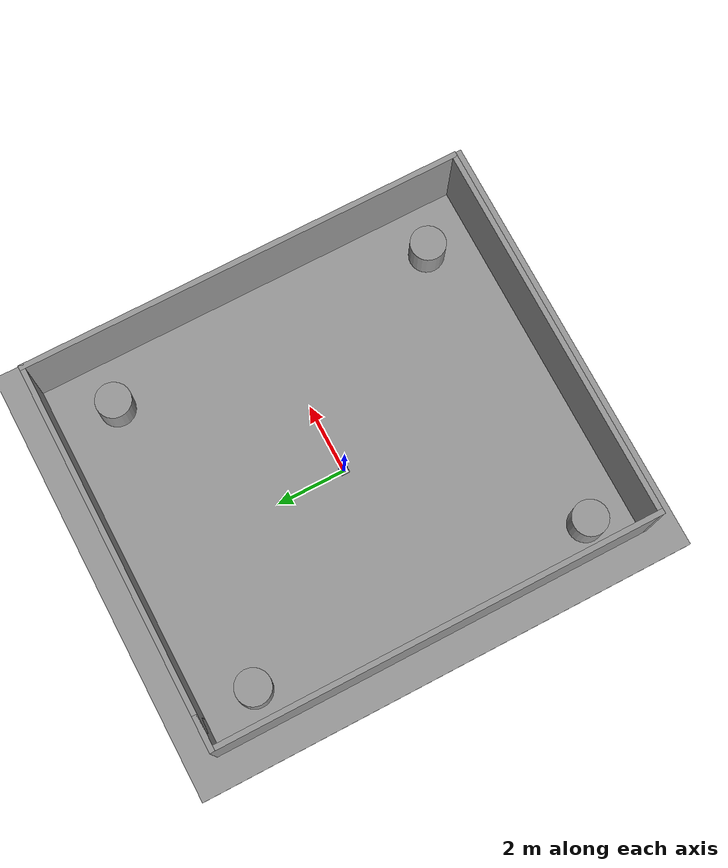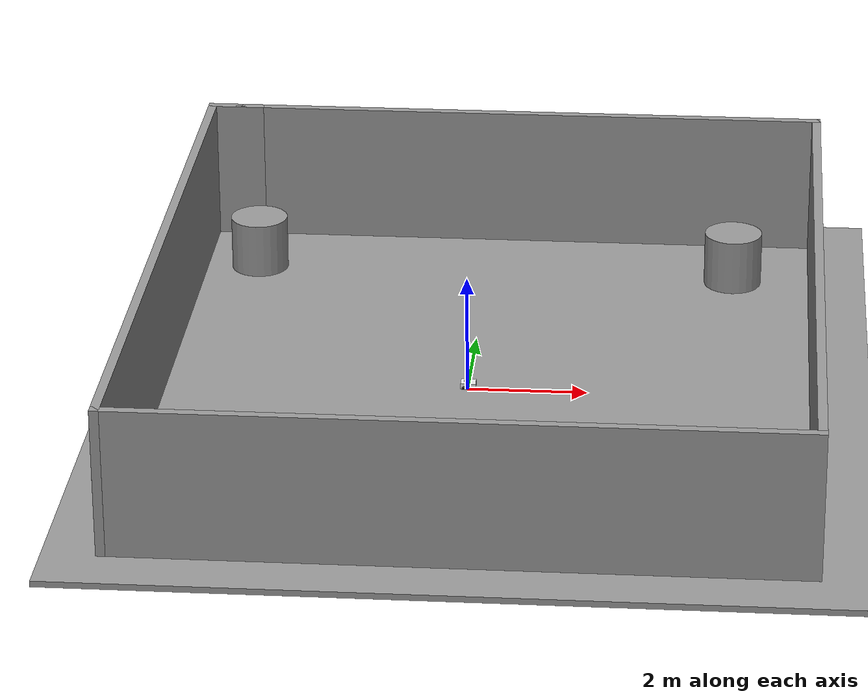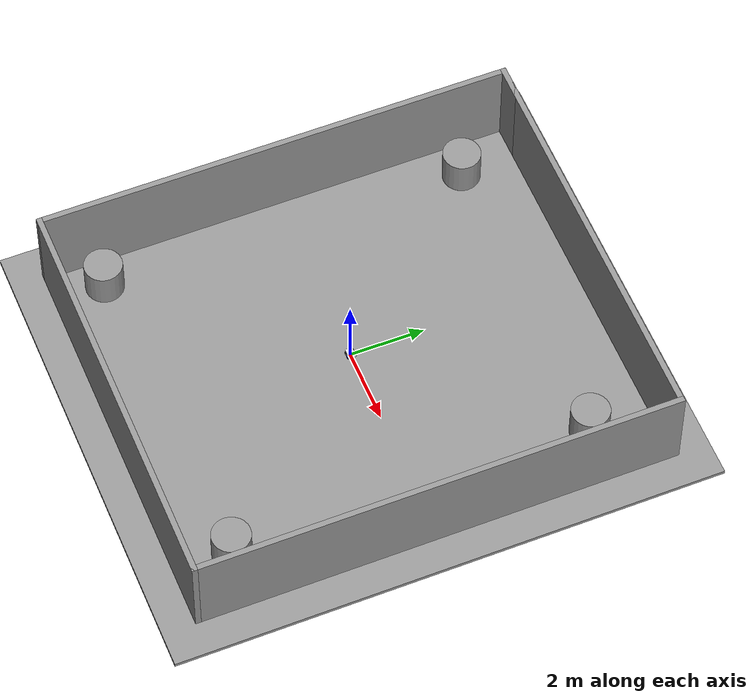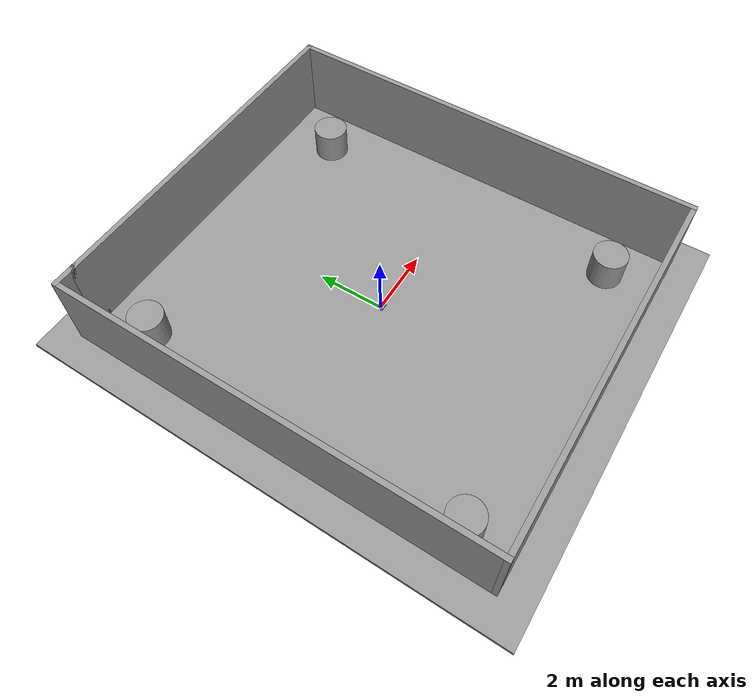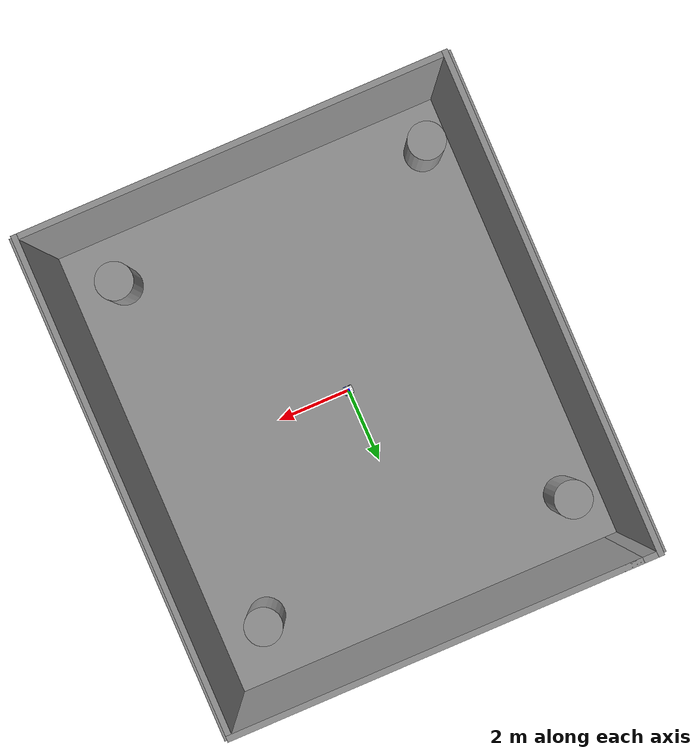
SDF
<sdf version="1.7">
 <world name="default">
  <light name="sun" type="directional">
   <pose>0 0 10 0 -0 0</pose>
   <diffuse>0.8 0.8 0.8 1</diffuse>
   <specular>0.2 0.2 0.2 1</specular>
   <attenuation>
    <range>1000</range>
    <constant>0.9</constant>
    <linear>0.01</linear>
    <quadratic>0.001</quadratic>
   </attenuation>
   <direction>-0.5 0.1 -0.9</direction>
   <spot><inner_angle>0</inner_angle><outer_angle>0</outer_angle><falloff>0</falloff></spot>
  </light>
  <model name="ground_plane">
   <static>1</static>
   <link name="link">
    <collision name="collision">
     <geometry><plane><normal>0 0 1</normal><size>100 100</size></plane></geometry>
     <surface>
      <contact><collide_bitmask>65535</collide_bitmask></contact>
      <friction><ode><mu>100</mu><mu2>50</mu2></ode></friction>
     </surface>
    </collision>
    <visual name="visual">
     <cast_shadows>0</cast_shadows>
     <geometry><plane><normal>0 0 1</normal><size>100 100</size></plane></geometry>
     <material>
      <script><uri>file://media/materials/scripts/gazebo.material</uri><name>Gazebo/Grey</name></script>
     </material>
    </visual>
   </link>
  </model>
  <gravity>0 0 -9.8</gravity>
  <magnetic_field>6e-06 2.3e-05 -4.2e-05</magnetic_field>
  <atmosphere type="adiabatic"/>
  <physics type="ode">
   <max_step_size>0.001</max_step_size>
   <real_time_factor>1</real_time_factor>
   <real_time_update_rate>1000</real_time_update_rate>
  </physics>
  <scene><ambient>0.4 0.4 0.4 1</ambient><background>0.7 0.7 0.7 1</background><shadows>1</shadows></scene>
  <audio><device>default</device></audio>
  <spherical_coordinates>
   <surface_model>EARTH_WGS84</surface_model>
   <latitude_deg>0</latitude_deg>
   <longitude_deg>0</longitude_deg>
   <elevation>0</elevation>
   <heading_deg>0</heading_deg>
  </spherical_coordinates>
  <model name="my_bot">
   <link name="base_link">
    <inertial>
     <pose>-0.004167 0 0.058333 0 -0 0</pose>
     <mass>0.6</mass>
     <inertia>
      <ixx>0.0023675</ixx>
      <ixy>0</ixy>
      <ixz>0.000104167</ixz>
      <iyy>0.00335708</iyy>
      <iyz>0</iyz>
      <izz>0.00444792</izz>
     </inertia>
    </inertial>
    <collision name="base_link_fixed_joint_lump__chassis_collision">
     <pose>0 0 0.05 0 -0 0</pose>
     <geometry><box><size>0.25 0.2 0.1</size></box></geometry>
    </collision>
    <collision name="base_link_fixed_joint_lump__laser_frame_collision_1">
     <pose>-0.025 0 0.1 0 -0 0</pose>
     <geometry><cylinder><length>0.04</length><radius>0.05</radius></cylinder></geometry>
    </collision>
    <visual name="base_link_fixed_joint_lump__chassis_visual">
     <pose>0 0 0.05 0 -0 0</pose>
     <geometry><box><size>0.25 0.2 0.1</size></box></geometry>
     <material>
      <script><name>Gazebo/White</name><uri>file://media/materials/scripts/gazebo.material</uri></script>
     </material>
    </visual>
    <visual name="base_link_fixed_joint_lump__laser_frame_visual_1">
     <pose>-0.025 0 0.1 0 -0 0</pose>
     <geometry><cylinder><length>0.04</length><radius>0.05</radius></cylinder></geometry>
    </visual>
    <sensor name="laser" type="ray">
     <visualize>1</visualize>
     <update_rate>10</update_rate>
     <ray>
      <scan>
       <horizontal>
        <samples>360</samples>
        <resolution>1</resolution>
        <min_angle>-3.14</min_angle>
        <max_angle>3.14</max_angle>
       </horizontal>
       <vertical><samples>1</samples><min_angle>0</min_angle><max_angle>0</max_angle></vertical>
      </scan>
      <range><min>0.3</min><max>12</max><resolution>0.01</resolution></range>
     </ray>
     <plugin name="laser_controller" filename="libgazebo_ros_ray_sensor.so">
      <ros><argument>~/out:=scan</argument></ros>
      <output_type>sensor_msgs/LaserScan</output_type>
      <frame_name>laser_frame</frame_name>
     </plugin>
     <pose>-0.025 0 0.1 0 -0 0</pose>
    </sensor>
   </link>
   <joint name="left_front" type="revolute">
    <pose relative_to="base_link">0.0625 0.11 0 -1.5708 0 0</pose>
    <parent>base_link</parent>
    <child>left_wheel_front</child>
    <axis>
     <xyz>0 0 1</xyz>
     <limit><lower>-1e+16</lower><upper>1e+16</upper></limit>
     <dynamics><spring_reference>0</spring_reference><spring_stiffness>0</spring_stiffness></dynamics>
    </axis>
   </joint>
   <link name="left_wheel_front">
    <pose relative_to="left_front">0 0 0 0 -0 0</pose>
    <inertial>
     <mass>0.1</mass>
     <inertia>
      <ixx>6.58333e-05</ixx>
      <ixy>0</ixy>
      <ixz>0</ixz>
      <iyy>6.58333e-05</iyy>
      <iyz>0</iyz>
      <izz>0.000125</izz>
     </inertia>
    </inertial>
    <collision name="left_wheel_front_collision">
     <geometry><cylinder><length>0.02</length><radius>0.05</radius></cylinder></geometry>
    </collision>
    <visual name="left_wheel_front_visual">
     <geometry><cylinder><length>0.02</length><radius>0.05</radius></cylinder></geometry>
     <material>
      <script><name>Gazebo/Blue</name><uri>file://media/materials/scripts/gazebo.material</uri></script>
     </material>
    </visual>
   </link>
   <joint name="left_rear" type="revolute">
    <pose relative_to="base_link">-0.0625 0.11 0 -1.5708 0 0</pose>
    <parent>base_link</parent>
    <child>left_wheel_rear</child>
    <axis>
     <xyz>0 0 1</xyz>
     <limit><lower>-1e+16</lower><upper>1e+16</upper></limit>
     <dynamics><spring_reference>0</spring_reference><spring_stiffness>0</spring_stiffness></dynamics>
    </axis>
   </joint>
   <link name="left_wheel_rear">
    <pose relative_to="left_rear">0 0 0 0 -0 0</pose>
    <inertial>
     <mass>0.1</mass>
     <inertia>
      <ixx>6.58333e-05</ixx>
      <ixy>0</ixy>
      <ixz>0</ixz>
      <iyy>6.58333e-05</iyy>
      <iyz>0</iyz>
      <izz>0.000125</izz>
     </inertia>
    </inertial>
    <collision name="left_wheel_rear_collision">
     <geometry><cylinder><length>0.02</length><radius>0.05</radius></cylinder></geometry>
    </collision>
    <visual name="left_wheel_rear_visual">
     <geometry><cylinder><length>0.02</length><radius>0.05</radius></cylinder></geometry>
     <material>
      <script><name>Gazebo/Black</name><uri>file://media/materials/scripts/gazebo.material</uri></script>
     </material>
    </visual>
   </link>
   <joint name="right_front" type="revolute">
    <pose relative_to="base_link">0.0625 -0.11 0 1.5708 -0 0</pose>
    <parent>base_link</parent>
    <child>right_wheel_front</child>
    <axis>
     <xyz>0 0 -1</xyz>
     <limit><lower>-1e+16</lower><upper>1e+16</upper></limit>
     <dynamics><spring_reference>0</spring_reference><spring_stiffness>0</spring_stiffness></dynamics>
    </axis>
   </joint>
   <link name="right_wheel_front">
    <pose relative_to="right_front">0 0 0 0 -0 0</pose>
    <inertial>
     <mass>0.1</mass>
     <inertia>
      <ixx>6.58333e-05</ixx>
      <ixy>0</ixy>
      <ixz>0</ixz>
      <iyy>6.58333e-05</iyy>
      <iyz>0</iyz>
      <izz>0.000125</izz>
     </inertia>
    </inertial>
    <collision name="right_wheel_front_collision">
     <geometry><cylinder><length>0.02</length><radius>0.05</radius></cylinder></geometry>
    </collision>
    <visual name="right_wheel_front_visual">
     <geometry><cylinder><length>0.02</length><radius>0.05</radius></cylinder></geometry>
     <material>
      <script><name>Gazebo/Blue</name><uri>file://media/materials/scripts/gazebo.material</uri></script>
     </material>
    </visual>
   </link>
   <joint name="right_rear" type="revolute">
    <pose relative_to="base_link">-0.0625 -0.11 0 1.5708 -0 0</pose>
    <parent>base_link</parent>
    <child>right_wheel_rear</child>
    <axis>
     <xyz>0 0 -1</xyz>
     <limit><lower>-1e+16</lower><upper>1e+16</upper></limit>
     <dynamics><spring_reference>0</spring_reference><spring_stiffness>0</spring_stiffness></dynamics>
    </axis>
   </joint>
   <link name="right_wheel_rear">
    <pose relative_to="right_rear">0 0 0 0 -0 0</pose>
    <inertial>
     <mass>0.1</mass>
     <inertia>
      <ixx>6.58333e-05</ixx>
      <ixy>0</ixy>
      <ixz>0</ixz>
      <iyy>6.58333e-05</iyy>
      <iyz>0</iyz>
      <izz>0.000125</izz>
     </inertia>
    </inertial>
    <collision name="right_wheel_rear_collision">
     <geometry><cylinder><length>0.02</length><radius>0.05</radius></cylinder></geometry>
    </collision>
    <visual name="right_wheel_rear_visual">
     <geometry><cylinder><length>0.02</length><radius>0.05</radius></cylinder></geometry>
     <material>
      <script><name>Gazebo/Black</name><uri>file://media/materials/scripts/gazebo.material</uri></script>
     </material>
    </visual>
   </link>
   <static>0</static>
   <plugin name="gazebo_ros2_control" filename="libgazebo_ros2_control.so">
    <parameters>/home/aero-sapphire/ros2_ws/install/vander_bot/share/vander_bot/config/my_controllers.yaml</parameters>
   </plugin>
   <pose>0.018369 -0.000456 0.05 0 -0 0.002674</pose>
  </model>
  <model name="ground_plane_0">
   <static>1</static>
   <link name="link">
    <collision name="collision">
     <geometry><plane><normal>0 0 1</normal><size>100 100</size></plane></geometry>
     <surface>
      <contact><collide_bitmask>65535</collide_bitmask></contact>
      <friction><ode><mu>100</mu><mu2>50</mu2></ode></friction>
     </surface>
    </collision>
    <visual name="visual">
     <cast_shadows>0</cast_shadows>
     <geometry><plane><normal>0 0 1</normal><size>100 100</size></plane></geometry>
     <material>
      <script><uri>file://media/materials/scripts/gazebo.material</uri><name>Gazebo/Grey</name></script>
     </material>
    </visual>
   </link>
   <pose>0.14053 -0.808775 0 0 -0 0</pose>
  </model>
  <model name="unit_cylinder">
   <pose>-4.26193 -4.99528 0.499997 -4e-06 -3e-06 -0</pose>
   <link name="link">
    <inertial>
     <mass>1</mass>
     <inertia><ixx>0.145833</ixx><ixy>0</ixy><ixz>0</ixz><iyy>0.145833</iyy><iyz>0</iyz><izz>0.125</izz></inertia>
    </inertial>
    <collision name="collision">
     <geometry><cylinder><radius>0.5</radius><length>1</length></cylinder></geometry>
    </collision>
    <visual name="visual">
     <geometry><cylinder><radius>0.5</radius><length>1</length></cylinder></geometry>
     <material>
      <script><name>Gazebo/Grey</name><uri>file://media/materials/scripts/gazebo.material</uri></script>
     </material>
    </visual>
   </link>
  </model>
  <model name="unit_cylinder_0">
   <pose>-4.08787 4.75671 0.499993 4e-06 3e-06 -0</pose>
   <link name="link">
    <inertial>
     <mass>1</mass>
     <inertia><ixx>0.145833</ixx><ixy>0</ixy><ixz>0</ixz><iyy>0.145833</iyy><iyz>0</iyz><izz>0.125</izz></inertia>
    </inertial>
    <collision name="collision">
     <geometry><cylinder><radius>0.5</radius><length>1</length></cylinder></geometry>
    </collision>
    <visual name="visual">
     <geometry><cylinder><radius>0.5</radius><length>1</length></cylinder></geometry>
     <material>
      <script><name>Gazebo/Grey</name><uri>file://media/materials/scripts/gazebo.material</uri></script>
     </material>
    </visual>
   </link>
  </model>
  <model name="room">
   <pose>0.331868 0.013433 0 0 -0 0</pose>
   <link name="Wall_10">
    <collision name="Wall_10_Collision">
     <geometry><box><size>12.75 0.15 2.5</size></box></geometry>
     <pose>0 0 1.25 0 -0 0</pose>
    </collision>
    <visual name="Wall_10_Visual">
     <pose>0 0 1.25 0 -0 0</pose>
     <geometry><box><size>12.75 0.15 2.5</size></box></geometry>
     <material>
      <script><uri>file://media/materials/scripts/gazebo.material</uri><name>Gazebo/Grey</name></script>
      <ambient>1 1 1 1</ambient>
     </material>
     <meta><layer>0</layer></meta>
    </visual>
    <pose>-5.425 -0 0 0 -0 1.5708</pose>
   </link>
   <link name="Wall_11">
    <collision name="Wall_11_Collision">
     <geometry><box><size>1 0.15 2.5</size></box></geometry>
     <pose>0 0 1.25 0 -0 0</pose>
    </collision>
    <visual name="Wall_11_Visual">
     <pose>0 0 1.25 0 -0 0</pose>
     <geometry><box><size>1 0.15 2.5</size></box></geometry>
     <material>
      <script><uri>file://media/materials/scripts/gazebo.material</uri><name>Gazebo/Grey</name></script>
      <ambient>1 1 1 1</ambient>
     </material>
     <meta><layer>0</layer></meta>
    </visual>
    <pose>-5 6.3 0 0 -0 0</pose>
   </link>
   <link name="Wall_7">
    <collision name="Wall_7_Collision">
     <geometry><box><size>10.5 0.15 2.5</size></box></geometry>
     <pose>0 0 1.25 0 -0 0</pose>
    </collision>
    <visual name="Wall_7_Visual">
     <pose>0 0 1.25 0 -0 0</pose>
     <geometry><box><size>10.5 0.15 2.5</size></box></geometry>
     <material>
      <script><uri>file://media/materials/scripts/gazebo.material</uri><name>Gazebo/Grey</name></script>
      <ambient>1 1 1 1</ambient>
     </material>
     <meta><layer>0</layer></meta>
    </visual>
    <pose>0.25 6.3 0 0 -0 0</pose>
   </link>
   <link name="Wall_8">
    <collision name="Wall_8_Collision">
     <geometry><box><size>12.75 0.15 2.5</size></box></geometry>
     <pose>0 0 1.25 0 -0 0</pose>
    </collision>
    <visual name="Wall_8_Visual">
     <pose>0 0 1.25 0 -0 0</pose>
     <geometry><box><size>12.75 0.15 2.5</size></box></geometry>
     <material>
      <script><uri>file://media/materials/scripts/gazebo.material</uri><name>Gazebo/Grey</name></script>
      <ambient>1 1 1 1</ambient>
     </material>
     <meta><layer>0</layer></meta>
    </visual>
    <pose>5.425 -0 0 0 -0 -1.5708</pose>
   </link>
   <link name="Wall_9">
    <collision name="Wall_9_Collision">
     <geometry><box><size>11 0.15 2.5</size></box></geometry>
     <pose>0 0 1.25 0 -0 0</pose>
    </collision>
    <visual name="Wall_9_Visual">
     <pose>0 0 1.25 0 -0 0</pose>
     <geometry><box><size>11 0.15 2.5</size></box></geometry>
     <material>
      <script><uri>file://media/materials/scripts/gazebo.material</uri><name>Gazebo/Grey</name></script>
      <ambient>1 1 1 1</ambient>
     </material>
     <meta><layer>0</layer></meta>
    </visual>
    <pose>-0 -6.3 0 0 -0 3.14159</pose>
   </link>
   <static>1</static>
  </model>
  <model name="unit_cylinder_1">
   <pose>4.36256 -4.8567 0.499993 4e-06 4e-06 -0</pose>
   <link name="link">
    <inertial>
     <mass>1</mass>
     <inertia><ixx>0.145833</ixx><ixy>0</ixy><ixz>0</ixz><iyy>0.145833</iyy><iyz>0</iyz><izz>0.125</izz></inertia>
    </inertial>
    <collision name="collision">
     <geometry><cylinder><radius>0.5</radius><length>1</length></cylinder></geometry>
    </collision>
    <visual name="visual">
     <geometry><cylinder><radius>0.5</radius><length>1</length></cylinder></geometry>
     <material>
      <script><name>Gazebo/Grey</name><uri>file://media/materials/scripts/gazebo.material</uri></script>
     </material>
    </visual>
   </link>
  </model>
  <model name="unit_cylinder_2">
   <pose>4.3461 4.62479 0.499997 -4e-06 -4e-06 -0</pose>
   <link name="link">
    <inertial>
     <mass>1</mass>
     <inertia><ixx>0.145833</ixx><ixy>0</ixy><ixz>0</ixz><iyy>0.145833</iyy><iyz>0</iyz><izz>0.125</izz></inertia>
    </inertial>
    <collision name="collision">
     <geometry><cylinder><radius>0.5</radius><length>1</length></cylinder></geometry>
    </collision>
    <visual name="visual">
     <geometry><cylinder><radius>0.5</radius><length>1</length></cylinder></geometry>
     <material>
      <script><name>Gazebo/Grey</name><uri>file://media/materials/scripts/gazebo.material</uri></script>
     </material>
    </visual>
   </link>
  </model>
 </world>
</sdf>
